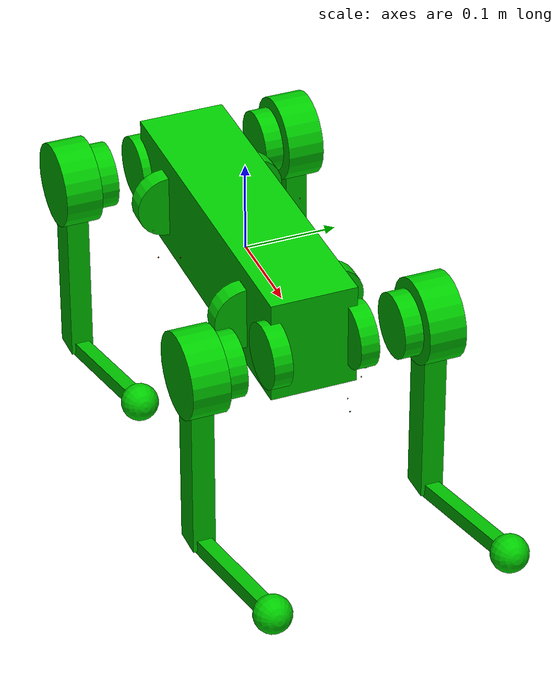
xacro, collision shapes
<?xml version="1.0" ?>
<!-- |    This document was autogenerated by xacro from robot.xacro                    | -->
<!-- |    EDITING THIS FILE BY HAND IS NOT RECOMMENDED                                 | -->
<robot name="go1" xmlns:xacro="http://www.ros.org/wiki/xacro">
  <material name="black">
    <color rgba="0.0 0.0 0.0 1.0"/>
  </material>
  <material name="blue">
    <color rgba="0.0 0.0 0.8 1.0"/>
  </material>
  <material name="green">
    <color rgba="0.0 0.8 0.0 1.0"/>
  </material>
  <material name="grey">
    <color rgba="0.2 0.2 0.2 1.0"/>
  </material>
  <material name="silver">
    <color rgba="0.9137254901960784 0.9137254901960784 0.8470588235294118 1.0"/>
  </material>
  <material name="orange">
    <color rgba="1.0 0.4235294117647059 0.0392156862745098 1.0"/>
  </material>
  <material name="brown">
    <color rgba="0.8705882352941177 0.8117647058823529 0.7647058823529411 1.0"/>
  </material>
  <material name="red">
    <color rgba="0.8 0.0 0.0 1.0"/>
  </material>
  <material name="white">
    <color rgba="1.0 1.0 1.0 1.0"/>
  </material>
  <!-- ros_control plugin: Gazebo Classic only (libgazebo_ros_control.so not available
       under gz sim). Port to gz_ros2_control if joint control is needed. -->
  <ros2_control name="GazeboSimSystem" type="system">
    <hardware>
      <plugin>gz_ros2_control/GazeboSimSystem</plugin>
    </hardware>
    <joint name="FR_hip_joint">
      <command_interface name="effort"><param name="initial_value">0.0</param></command_interface>
      <state_interface name="position"><param name="initial_value">0.0</param></state_interface>
      <state_interface name="velocity"/>
      <state_interface name="effort"/>
    </joint>
    <joint name="FR_thigh_joint">
      <command_interface name="effort"><param name="initial_value">0.0</param></command_interface>
      <state_interface name="position"><param name="initial_value">0.789465</param></state_interface>
      <state_interface name="velocity"/>
      <state_interface name="effort"/>
    </joint>
    <joint name="FR_calf_joint">
      <command_interface name="effort"><param name="initial_value">0.0</param></command_interface>
      <state_interface name="position"><param name="initial_value">-1.578930</param></state_interface>
      <state_interface name="velocity"/>
      <state_interface name="effort"/>
    </joint>
    <joint name="FL_hip_joint">
      <command_interface name="effort"><param name="initial_value">0.0</param></command_interface>
      <state_interface name="position"><param name="initial_value">0.0</param></state_interface>
      <state_interface name="velocity"/>
      <state_interface name="effort"/>
    </joint>
    <joint name="FL_thigh_joint">
      <command_interface name="effort"><param name="initial_value">0.0</param></command_interface>
      <state_interface name="position"><param name="initial_value">0.789465</param></state_interface>
      <state_interface name="velocity"/>
      <state_interface name="effort"/>
    </joint>
    <joint name="FL_calf_joint">
      <command_interface name="effort"><param name="initial_value">0.0</param></command_interface>
      <state_interface name="position"><param name="initial_value">-1.578930</param></state_interface>
      <state_interface name="velocity"/>
      <state_interface name="effort"/>
    </joint>
    <joint name="RR_hip_joint">
      <command_interface name="effort"><param name="initial_value">0.0</param></command_interface>
      <state_interface name="position"><param name="initial_value">0.0</param></state_interface>
      <state_interface name="velocity"/>
      <state_interface name="effort"/>
    </joint>
    <joint name="RR_thigh_joint">
      <command_interface name="effort"><param name="initial_value">0.0</param></command_interface>
      <state_interface name="position"><param name="initial_value">0.789465</param></state_interface>
      <state_interface name="velocity"/>
      <state_interface name="effort"/>
    </joint>
    <joint name="RR_calf_joint">
      <command_interface name="effort"><param name="initial_value">0.0</param></command_interface>
      <state_interface name="position"><param name="initial_value">-1.578930</param></state_interface>
      <state_interface name="velocity"/>
      <state_interface name="effort"/>
    </joint>
    <joint name="RL_hip_joint">
      <command_interface name="effort"><param name="initial_value">0.0</param></command_interface>
      <state_interface name="position"><param name="initial_value">0.0</param></state_interface>
      <state_interface name="velocity"/>
      <state_interface name="effort"/>
    </joint>
    <joint name="RL_thigh_joint">
      <command_interface name="effort"><param name="initial_value">0.0</param></command_interface>
      <state_interface name="position"><param name="initial_value">0.789465</param></state_interface>
      <state_interface name="velocity"/>
      <state_interface name="effort"/>
    </joint>
    <joint name="RL_calf_joint">
      <command_interface name="effort"><param name="initial_value">0.0</param></command_interface>
      <state_interface name="position"><param name="initial_value">-1.578930</param></state_interface>
      <state_interface name="velocity"/>
      <state_interface name="effort"/>
    </joint>
    <sensor name="imu_sensor">
      <state_interface name="orientation.w"/>
      <state_interface name="orientation.x"/>
      <state_interface name="orientation.y"/>
      <state_interface name="orientation.z"/>
      <state_interface name="angular_velocity.x"/>
      <state_interface name="angular_velocity.y"/>
      <state_interface name="angular_velocity.z"/>
      <state_interface name="linear_acceleration.x"/>
      <state_interface name="linear_acceleration.y"/>
      <state_interface name="linear_acceleration.z"/>
    </sensor>
  </ros2_control>
  <gazebo>
    <plugin filename="libgz_ros2_control-system.so"
            name="gz_ros2_control::GazeboSimROS2ControlPlugin">
      <parameters>$(find main_bot)/config/go1_controllers.yaml</parameters>
    </plugin>
    <plugin filename="gz-sim-imu-system" name="gz::sim::systems::Imu"/>
  </gazebo>
  <!-- Show the trajectory of trunk center. Gazebo Classic only (libLinkPlot3DPlugin.so). -->
  <!-- Show the trajectory of foot. You can add another trajectory about another foot. -->
  <!-- Gazebo Classic only (libgazebo_ros_force.so). No gz sim equivalent wired up yet. -->
  <gazebo reference="base">
    <material>Gazebo/Green</material>
    <turnGravityOff>false</turnGravityOff>
  </gazebo>
  <gazebo reference="trunk">
    <mu1>0.2</mu1>
    <mu2>0.2</mu2>
    <kp value="1000000.0"/>
    <kd value="1.0"/>
  </gazebo>
  <gazebo reference="stick_link">
    <mu1>0.2</mu1>
    <mu2>0.2</mu2>
    <material>Gazebo/White</material>
  </gazebo>
  <gazebo reference="imu_link">
    <mu1>0.2</mu1>
    <mu2>0.2</mu2>
    <material>Gazebo/Red</material>
  </gazebo>
  <!-- FL leg -->
  <gazebo reference="FL_hip">
    <mu1>0.2</mu1>
    <mu2>0.2</mu2>
    <material>Gazebo/DarkGrey</material>
  </gazebo>
  <gazebo reference="FL_thigh">
    <mu1>0.2</mu1>
    <mu2>0.2</mu2>
    <self_collide>1</self_collide>
    <material>Gazebo/DarkGrey</material>
    <kp value="1000000.0"/>
    <kd value="1.0"/>
  </gazebo>
  <gazebo reference="FL_calf">
    <mu1>0.2</mu1>
    <mu2>0.2</mu2>
    <self_collide>1</self_collide>
  </gazebo>
  <gazebo reference="FL_foot">
    <mu1>0.6</mu1>
    <mu2>0.6</mu2>
    <self_collide>1</self_collide>
    <material>Gazebo/DarkGrey</material>
    <kp value="1000000.0"/>
    <kd value="1.0"/>
  </gazebo>
  <!-- FR leg -->
  <gazebo reference="FR_hip">
    <mu1>0.2</mu1>
    <mu2>0.2</mu2>
    <material>Gazebo/DarkGrey</material>
  </gazebo>
  <gazebo reference="FR_thigh">
    <mu1>0.2</mu1>
    <mu2>0.2</mu2>
    <self_collide>1</self_collide>
    <material>Gazebo/DarkGrey</material>
    <kp value="1000000.0"/>
    <kd value="1.0"/>
  </gazebo>
  <gazebo reference="FR_calf">
    <mu1>0.2</mu1>
    <mu2>0.2</mu2>
    <self_collide>1</self_collide>
  </gazebo>
  <gazebo reference="FR_foot">
    <mu1>0.6</mu1>
    <mu2>0.6</mu2>
    <self_collide>1</self_collide>
    <material>Gazebo/DarkGrey</material>
    <kp value="1000000.0"/>
    <kd value="1.0"/>
  </gazebo>
  <!-- RL leg -->
  <gazebo reference="RL_hip">
    <mu1>0.2</mu1>
    <mu2>0.2</mu2>
    <material>Gazebo/DarkGrey</material>
  </gazebo>
  <gazebo reference="RL_thigh">
    <mu1>0.2</mu1>
    <mu2>0.2</mu2>
    <self_collide>1</self_collide>
    <material>Gazebo/DarkGrey</material>
    <kp value="1000000.0"/>
    <kd value="1.0"/>
  </gazebo>
  <gazebo reference="RL_calf">
    <mu1>0.2</mu1>
    <mu2>0.2</mu2>
    <self_collide>1</self_collide>
  </gazebo>
  <gazebo reference="RL_foot">
    <mu1>0.6</mu1>
    <mu2>0.6</mu2>
    <self_collide>1</self_collide>
    <material>Gazebo/DarkGrey</material>
    <kp value="1000000.0"/>
    <kd value="1.0"/>
  </gazebo>
  <!-- RR leg -->
  <gazebo reference="RR_hip">
    <mu1>0.2</mu1>
    <mu2>0.2</mu2>
    <material>Gazebo/DarkGrey</material>
  </gazebo>
  <gazebo reference="RR_thigh">
    <mu1>0.2</mu1>
    <mu2>0.2</mu2>
    <self_collide>1</self_collide>
    <material>Gazebo/DarkGrey</material>
    <kp value="1000000.0"/>
    <kd value="1.0"/>
  </gazebo>
  <gazebo reference="RR_calf">
    <mu1>0.2</mu1>
    <mu2>0.2</mu2>
    <self_collide>1</self_collide>
  </gazebo>
  <gazebo reference="RR_foot">
    <mu1>0.6</mu1>
    <mu2>0.6</mu2>
    <self_collide>1</self_collide>
    <material>Gazebo/DarkGrey</material>
    <kp value="1000000.0"/>
    <kd value="1.0"/>
  </gazebo>
  <!-- Rotor related joint and link is only for demonstrate location. -->
  <!-- Actually, the rotor will rotate and the joint is not fixed. Reduction ratio should be considered. -->
  <!-- Debug mode will hung up the robot, use "true" or "false" to switch it. -->
  <link name="base">
    <visual>
      <origin rpy="0 0 0" xyz="0 0 0"/>
      <geometry>
        <box size="0.001 0.001 0.001"/>
      </geometry>
    </visual>
  </link>
  <joint name="floating_base" type="fixed">
    <origin rpy="0 0 0" xyz="0 0 0"/>
    <parent link="base"/>
    <child link="trunk"/>
  </joint>
  <link name="trunk">
    <visual>
      <origin rpy="0 0 0" xyz="0 0 0"/>
      <geometry>
        <mesh filename="package://main_bot/description/meshes/trunk.dae" scale="1 1 1"/>
      </geometry>
      <material name="green"/>
    </visual>
    <collision>
      <origin rpy="0 0 0" xyz="0 0 0"/>
      <geometry>
        <box size="0.3762 0.0935 0.114"/>
      </geometry>
    </collision>
    <inertial>
      <origin rpy="0 0 0" xyz="0.0223 0.002 -0.0005"/>
      <mass value="5.204"/>
      <inertia ixx="0.0168128557" ixy="-0.0002296769" ixz="-0.0002945293" iyy="0.063009565" iyz="-4.18731e-05" izz="0.0716547275"/>
    </inertial>
  </link>
  <joint name="imu_joint" type="fixed">
    <parent link="trunk"/>
    <child link="imu_link"/>
    <origin rpy="0 0 0" xyz="-0.01592 -0.06659 -0.00617"/>
  </joint>
  <link name="imu_link">
    <inertial>
      <mass value="0.001"/>
      <origin rpy="0 0 0" xyz="0 0 0"/>
      <inertia ixx="0.0001" ixy="0" ixz="0" iyy="0.0001" iyz="0" izz="0.0001"/>
    </inertial>
    <visual>
      <origin rpy="0 0 0" xyz="0 0 0"/>
      <geometry>
        <box size="0.001 0.001 0.001"/>
      </geometry>
    </visual>
    <collision>
      <origin rpy="0 0 0" xyz="0 0 0"/>
      <geometry>
        <box size=".001 .001 .001"/>
      </geometry>
    </collision>
  </link>
  <joint name="FR_hip_joint" type="revolute">
    <origin rpy="0 0 0" xyz="0.1881 -0.04675 0"/>
    <parent link="trunk"/>
    <child link="FR_hip"/>
    <axis xyz="1 0 0"/>
    <dynamics damping="0.0" friction="0.0"/>
    <limit effort="23.7" lower="-0.863" upper="0.863" velocity="30.1"/>
  </joint>
  <joint name="FR_hip_rotor_joint" type="fixed">
    <origin rpy="0 0 0" xyz="0.11215 -0.04675 0"/>
    <parent link="trunk"/>
    <child link="FR_hip_rotor"/>
  </joint>
  <link name="FR_hip">
    <visual>
      <origin rpy="3.141592653589793 0 0" xyz="0 0 0"/>
      <geometry>
        <mesh filename="package://main_bot/description/meshes/hip.dae" scale="1 1 1"/>
      </geometry>
      <material name="green"/>
    </visual>
    <collision>
      <origin rpy="1.5707963267948966 0 0" xyz="0 -0.08 0"/>
      <geometry>
        <cylinder length="0.04" radius="0.046"/>
      </geometry>
    </collision>
    <inertial>
      <origin rpy="0 0 0" xyz="-0.005657 0.008752 -0.000102"/>
      <mass value="0.591"/>
      <inertia ixx="0.000334008405" ixy="1.0826066e-05" ixz="1.290732e-06" iyy="0.000619101213" iyz="-1.643194e-06" izz="0.00040057614"/>
    </inertial>
  </link>
  <link name="FR_hip_rotor">
    <visual>
      <origin rpy="0 1.5707963267948966 0" xyz="0 0 0"/>
      <geometry>
        <cylinder length="0.02" radius="0.035"/>
      </geometry>
      <material name="green"/>
    </visual>
    <collision>
      <origin rpy="0 1.5707963267948966 0" xyz="0 0 0"/>
      <geometry>
        <cylinder length="0.02" radius="0.035"/>
      </geometry>
    </collision>
    <inertial>
      <origin rpy="0 0 0" xyz="0.0 0.0 0.0"/>
      <mass value="0.089"/>
      <inertia ixx="0.000111842" ixy="0.0" ixz="0.0" iyy="5.9647e-05" iyz="0.0" izz="5.9647e-05"/>
    </inertial>
  </link>
  <joint name="FR_thigh_joint" type="revolute">
    <origin rpy="0 0 0" xyz="0 -0.08 0"/>
    <parent link="FR_hip"/>
    <child link="FR_thigh"/>
    <axis xyz="0 1 0"/>
    <dynamics damping="0.0" friction="0.0"/>
    <limit effort="23.7" lower="-0.686" upper="4.501" velocity="30.1"/>
  </joint>
  <joint name="FR_thigh_rotor_joint" type="fixed">
    <origin rpy="0 0 0" xyz="0.0 0.00015 0"/>
    <parent link="FR_hip"/>
    <child link="FR_thigh_rotor"/>
  </joint>
  <link name="FR_thigh">
    <visual>
      <origin rpy="0 0 0" xyz="0 0 0"/>
      <geometry>
        <mesh filename="package://main_bot/description/meshes/thigh_mirror.dae" scale="1 1 1"/>
      </geometry>
      <material name="green"/>
    </visual>
    <collision>
      <origin rpy="0 1.5707963267948966 0" xyz="0 0 -0.1065"/>
      <geometry>
        <box size="0.213 0.0245 0.034"/>
      </geometry>
    </collision>
    <inertial>
      <origin rpy="0 0 0" xyz="-0.003342 0.018054 -0.033451"/>
      <mass value="0.92"/>
      <inertia ixx="0.004431760472" ixy="-5.7496807e-05" ixz="-0.000218457134" iyy="0.004485671726" iyz="-0.000572001265" izz="0.000740309489"/>
    </inertial>
  </link>
  <link name="FR_thigh_rotor">
    <visual>
      <origin rpy="1.5707963267948966 0 0" xyz="0 0 0"/>
      <geometry>
        <cylinder length="0.02" radius="0.035"/>
      </geometry>
      <material name="green"/>
    </visual>
    <collision>
      <origin rpy="1.5707963267948966 0 0" xyz="0 0 0"/>
      <geometry>
        <cylinder length="0.02" radius="0.035"/>
      </geometry>
    </collision>
    <inertial>
      <origin rpy="0 0 0" xyz="0.0 0.0 0.0"/>
      <mass value="0.089"/>
      <inertia ixx="5.9647e-05" ixy="0.0" ixz="0.0" iyy="0.000111842" iyz="0.0" izz="5.9647e-05"/>
    </inertial>
  </link>
  <joint name="FR_calf_joint" type="revolute">
    <origin rpy="0 0 0" xyz="0 0 -0.213"/>
    <parent link="FR_thigh"/>
    <child link="FR_calf"/>
    <axis xyz="0 1 0"/>
    <dynamics damping="0.0" friction="0.0"/>
    <limit effort="35.55" lower="-2.818" upper="-0.888" velocity="20.06"/>
  </joint>
  <joint name="FR_calf_rotor_joint" type="fixed">
    <origin rpy="0 0 0" xyz="0.0 0.03235 0"/>
    <parent link="FR_thigh"/>
    <child link="FR_calf_rotor"/>
  </joint>
  <link name="FR_calf">
    <visual>
      <origin rpy="0 0 0" xyz="0 0 0"/>
      <geometry>
        <mesh filename="package://main_bot/description/meshes/calf.dae" scale="1 1 1"/>
      </geometry>
      <material name="green"/>
    </visual>
    <collision>
      <origin rpy="0 1.5707963267948966 0" xyz="0 0 -0.1065"/>
      <geometry>
        <box size="0.213 0.016 0.016"/>
      </geometry>
    </collision>
    <inertial>
      <origin rpy="0 0 0" xyz="0.006197 0.001408 -0.116695"/>
      <mass value="0.135862"/>
      <inertia ixx="0.001088793059" ixy="-2.55679e-07" ixz="7.117814e-06" iyy="0.001100428748" iyz="2.077264e-06" izz="2.4787446e-05"/>
    </inertial>
  </link>
  <link name="FR_calf_rotor">
    <visual>
      <origin rpy="1.5707963267948966 0 0" xyz="0 0 0"/>
      <geometry>
        <cylinder length="0.02" radius="0.035"/>
      </geometry>
      <material name="green"/>
    </visual>
    <collision>
      <origin rpy="1.5707963267948966 0 0" xyz="0 0 0"/>
      <geometry>
        <cylinder length="0.02" radius="0.035"/>
      </geometry>
    </collision>
    <inertial>
      <origin rpy="0 0 0" xyz="0.0 0.0 0.0"/>
      <mass value="0.089"/>
      <inertia ixx="5.9647e-05" ixy="0.0" ixz="0.0" iyy="0.000111842" iyz="0.0" izz="5.9647e-05"/>
    </inertial>
  </link>
  <joint name="FR_foot_fixed" type="fixed">
    <origin rpy="0 0 0" xyz="0 0 -0.213"/>
    <parent link="FR_calf"/>
    <child link="FR_foot"/>
  </joint>
  <link name="FR_foot">
    <visual>
      <origin rpy="0 0 0" xyz="0 0 0"/>
      <geometry>
        <sphere radius="0.01"/>
      </geometry>
      <material name="green"/>
    </visual>
    <collision>
      <origin rpy="0 0 0" xyz="0 0 0"/>
      <geometry>
        <sphere radius="0.02"/>
      </geometry>
    </collision>
    <inertial>
      <mass value="0.06"/>
      <inertia ixx="9.600000000000001e-06" ixy="0.0" ixz="0.0" iyy="9.600000000000001e-06" iyz="0.0" izz="9.600000000000001e-06"/>
    </inertial>
  </link>
  <transmission name="FR_hip_tran">
    <type>transmission_interface/SimpleTransmission</type>
    <joint name="FR_hip_joint">
      <hardwareInterface>hardware_interface/EffortJointInterface</hardwareInterface>
    </joint>
    <actuator name="FR_hip_motor">
      <hardwareInterface>hardware_interface/EffortJointInterface</hardwareInterface>
      <mechanicalReduction>1</mechanicalReduction>
    </actuator>
  </transmission>
  <transmission name="FR_thigh_tran">
    <type>transmission_interface/SimpleTransmission</type>
    <joint name="FR_thigh_joint">
      <hardwareInterface>hardware_interface/EffortJointInterface</hardwareInterface>
    </joint>
    <actuator name="FR_thigh_motor">
      <hardwareInterface>hardware_interface/EffortJointInterface</hardwareInterface>
      <mechanicalReduction>1</mechanicalReduction>
    </actuator>
  </transmission>
  <transmission name="FR_calf_tran">
    <type>transmission_interface/SimpleTransmission</type>
    <joint name="FR_calf_joint">
      <hardwareInterface>hardware_interface/EffortJointInterface</hardwareInterface>
    </joint>
    <actuator name="FR_calf_motor">
      <hardwareInterface>hardware_interface/EffortJointInterface</hardwareInterface>
      <mechanicalReduction>1</mechanicalReduction>
    </actuator>
  </transmission>
  <joint name="FL_hip_joint" type="revolute">
    <origin rpy="0 0 0" xyz="0.1881 0.04675 0"/>
    <parent link="trunk"/>
    <child link="FL_hip"/>
    <axis xyz="1 0 0"/>
    <dynamics damping="0.0" friction="0.0"/>
    <limit effort="23.7" lower="-0.863" upper="0.863" velocity="30.1"/>
  </joint>
  <joint name="FL_hip_rotor_joint" type="fixed">
    <origin rpy="0 0 0" xyz="0.11215 0.04675 0"/>
    <parent link="trunk"/>
    <child link="FL_hip_rotor"/>
  </joint>
  <link name="FL_hip">
    <visual>
      <origin rpy="0 0 0" xyz="0 0 0"/>
      <geometry>
        <mesh filename="package://main_bot/description/meshes/hip.dae" scale="1 1 1"/>
      </geometry>
      <material name="green"/>
    </visual>
    <collision>
      <origin rpy="1.5707963267948966 0 0" xyz="0 0.08 0"/>
      <geometry>
        <cylinder length="0.04" radius="0.046"/>
      </geometry>
    </collision>
    <inertial>
      <origin rpy="0 0 0" xyz="-0.005657 -0.008752 -0.000102"/>
      <mass value="0.591"/>
      <inertia ixx="0.000334008405" ixy="-1.0826066e-05" ixz="1.290732e-06" iyy="0.000619101213" iyz="1.643194e-06" izz="0.00040057614"/>
    </inertial>
  </link>
  <link name="FL_hip_rotor">
    <visual>
      <origin rpy="0 1.5707963267948966 0" xyz="0 0 0"/>
      <geometry>
        <cylinder length="0.02" radius="0.035"/>
      </geometry>
      <material name="green"/>
    </visual>
    <collision>
      <origin rpy="0 1.5707963267948966 0" xyz="0 0 0"/>
      <geometry>
        <cylinder length="0.02" radius="0.035"/>
      </geometry>
    </collision>
    <inertial>
      <origin rpy="0 0 0" xyz="0.0 0.0 0.0"/>
      <mass value="0.089"/>
      <inertia ixx="0.000111842" ixy="0.0" ixz="0.0" iyy="5.9647e-05" iyz="0.0" izz="5.9647e-05"/>
    </inertial>
  </link>
  <joint name="FL_thigh_joint" type="revolute">
    <origin rpy="0 0 0" xyz="0 0.08 0"/>
    <parent link="FL_hip"/>
    <child link="FL_thigh"/>
    <axis xyz="0 1 0"/>
    <dynamics damping="0.0" friction="0.0"/>
    <limit effort="23.7" lower="-0.686" upper="4.501" velocity="30.1"/>
  </joint>
  <joint name="FL_thigh_rotor_joint" type="fixed">
    <origin rpy="0 0 0" xyz="0.0 -0.00015 0"/>
    <parent link="FL_hip"/>
    <child link="FL_thigh_rotor"/>
  </joint>
  <link name="FL_thigh">
    <visual>
      <origin rpy="0 0 0" xyz="0 0 0"/>
      <geometry>
        <mesh filename="package://main_bot/description/meshes/thigh.dae" scale="1 1 1"/>
      </geometry>
      <material name="green"/>
    </visual>
    <collision>
      <origin rpy="0 1.5707963267948966 0" xyz="0 0 -0.1065"/>
      <geometry>
        <box size="0.213 0.0245 0.034"/>
      </geometry>
    </collision>
    <inertial>
      <origin rpy="0 0 0" xyz="-0.003342 -0.018054 -0.033451"/>
      <mass value="0.92"/>
      <inertia ixx="0.004431760472" ixy="5.7496807e-05" ixz="-0.000218457134" iyy="0.004485671726" iyz="0.000572001265" izz="0.000740309489"/>
    </inertial>
  </link>
  <link name="FL_thigh_rotor">
    <visual>
      <origin rpy="1.5707963267948966 0 0" xyz="0 0 0"/>
      <geometry>
        <cylinder length="0.02" radius="0.035"/>
      </geometry>
      <material name="green"/>
    </visual>
    <collision>
      <origin rpy="1.5707963267948966 0 0" xyz="0 0 0"/>
      <geometry>
        <cylinder length="0.02" radius="0.035"/>
      </geometry>
    </collision>
    <inertial>
      <origin rpy="0 0 0" xyz="0.0 0.0 0.0"/>
      <mass value="0.089"/>
      <inertia ixx="5.9647e-05" ixy="0.0" ixz="0.0" iyy="0.000111842" iyz="0.0" izz="5.9647e-05"/>
    </inertial>
  </link>
  <joint name="FL_calf_joint" type="revolute">
    <origin rpy="0 0 0" xyz="0 0 -0.213"/>
    <parent link="FL_thigh"/>
    <child link="FL_calf"/>
    <axis xyz="0 1 0"/>
    <dynamics damping="0.0" friction="0.0"/>
    <limit effort="35.55" lower="-2.818" upper="-0.888" velocity="20.06"/>
  </joint>
  <joint name="FL_calf_rotor_joint" type="fixed">
    <origin rpy="0 0 0" xyz="0.0 -0.03235 0"/>
    <parent link="FL_thigh"/>
    <child link="FL_calf_rotor"/>
  </joint>
  <link name="FL_calf">
    <visual>
      <origin rpy="0 0 0" xyz="0 0 0"/>
      <geometry>
        <mesh filename="package://main_bot/description/meshes/calf.dae" scale="1 1 1"/>
      </geometry>
      <material name="green"/>
    </visual>
    <collision>
      <origin rpy="0 1.5707963267948966 0" xyz="0 0 -0.1065"/>
      <geometry>
        <box size="0.213 0.016 0.016"/>
      </geometry>
    </collision>
    <inertial>
      <origin rpy="0 0 0" xyz="0.006197 0.001408 -0.116695"/>
      <mass value="0.135862"/>
      <inertia ixx="0.001088793059" ixy="-2.55679e-07" ixz="7.117814e-06" iyy="0.001100428748" iyz="2.077264e-06" izz="2.4787446e-05"/>
    </inertial>
  </link>
  <link name="FL_calf_rotor">
    <visual>
      <origin rpy="1.5707963267948966 0 0" xyz="0 0 0"/>
      <geometry>
        <cylinder length="0.02" radius="0.035"/>
      </geometry>
      <material name="green"/>
    </visual>
    <collision>
      <origin rpy="1.5707963267948966 0 0" xyz="0 0 0"/>
      <geometry>
        <cylinder length="0.02" radius="0.035"/>
      </geometry>
    </collision>
    <inertial>
      <origin rpy="0 0 0" xyz="0.0 0.0 0.0"/>
      <mass value="0.089"/>
      <inertia ixx="5.9647e-05" ixy="0.0" ixz="0.0" iyy="0.000111842" iyz="0.0" izz="5.9647e-05"/>
    </inertial>
  </link>
  <joint name="FL_foot_fixed" type="fixed">
    <origin rpy="0 0 0" xyz="0 0 -0.213"/>
    <parent link="FL_calf"/>
    <child link="FL_foot"/>
  </joint>
  <link name="FL_foot">
    <visual>
      <origin rpy="0 0 0" xyz="0 0 0"/>
      <geometry>
        <sphere radius="0.01"/>
      </geometry>
      <material name="green"/>
    </visual>
    <collision>
      <origin rpy="0 0 0" xyz="0 0 0"/>
      <geometry>
        <sphere radius="0.02"/>
      </geometry>
    </collision>
    <inertial>
      <mass value="0.06"/>
      <inertia ixx="9.600000000000001e-06" ixy="0.0" ixz="0.0" iyy="9.600000000000001e-06" iyz="0.0" izz="9.600000000000001e-06"/>
    </inertial>
  </link>
  <transmission name="FL_hip_tran">
    <type>transmission_interface/SimpleTransmission</type>
    <joint name="FL_hip_joint">
      <hardwareInterface>hardware_interface/EffortJointInterface</hardwareInterface>
    </joint>
    <actuator name="FL_hip_motor">
      <hardwareInterface>hardware_interface/EffortJointInterface</hardwareInterface>
      <mechanicalReduction>1</mechanicalReduction>
    </actuator>
  </transmission>
  <transmission name="FL_thigh_tran">
    <type>transmission_interface/SimpleTransmission</type>
    <joint name="FL_thigh_joint">
      <hardwareInterface>hardware_interface/EffortJointInterface</hardwareInterface>
    </joint>
    <actuator name="FL_thigh_motor">
      <hardwareInterface>hardware_interface/EffortJointInterface</hardwareInterface>
      <mechanicalReduction>1</mechanicalReduction>
    </actuator>
  </transmission>
  <transmission name="FL_calf_tran">
    <type>transmission_interface/SimpleTransmission</type>
    <joint name="FL_calf_joint">
      <hardwareInterface>hardware_interface/EffortJointInterface</hardwareInterface>
    </joint>
    <actuator name="FL_calf_motor">
      <hardwareInterface>hardware_interface/EffortJointInterface</hardwareInterface>
      <mechanicalReduction>1</mechanicalReduction>
    </actuator>
  </transmission>
  <joint name="RR_hip_joint" type="revolute">
    <origin rpy="0 0 0" xyz="-0.1881 -0.04675 0"/>
    <parent link="trunk"/>
    <child link="RR_hip"/>
    <axis xyz="1 0 0"/>
    <dynamics damping="0.0" friction="0.0"/>
    <limit effort="23.7" lower="-0.863" upper="0.863" velocity="30.1"/>
  </joint>
  <joint name="RR_hip_rotor_joint" type="fixed">
    <origin rpy="0 0 0" xyz="-0.11215 -0.04675 0"/>
    <parent link="trunk"/>
    <child link="RR_hip_rotor"/>
  </joint>
  <link name="RR_hip">
    <visual>
      <origin rpy="3.141592653589793 3.141592653589793 0" xyz="0 0 0"/>
      <geometry>
        <mesh filename="package://main_bot/description/meshes/hip.dae" scale="1 1 1"/>
      </geometry>
      <material name="green"/>
    </visual>
    <collision>
      <origin rpy="1.5707963267948966 0 0" xyz="0 -0.08 0"/>
      <geometry>
        <cylinder length="0.04" radius="0.046"/>
      </geometry>
    </collision>
    <inertial>
      <origin rpy="0 0 0" xyz="0.005657 0.008752 -0.000102"/>
      <mass value="0.591"/>
      <inertia ixx="0.000334008405" ixy="-1.0826066e-05" ixz="-1.290732e-06" iyy="0.000619101213" iyz="-1.643194e-06" izz="0.00040057614"/>
    </inertial>
  </link>
  <link name="RR_hip_rotor">
    <visual>
      <origin rpy="0 1.5707963267948966 0" xyz="0 0 0"/>
      <geometry>
        <cylinder length="0.02" radius="0.035"/>
      </geometry>
      <material name="green"/>
    </visual>
    <collision>
      <origin rpy="0 1.5707963267948966 0" xyz="0 0 0"/>
      <geometry>
        <cylinder length="0.02" radius="0.035"/>
      </geometry>
    </collision>
    <inertial>
      <origin rpy="0 0 0" xyz="0.0 0.0 0.0"/>
      <mass value="0.089"/>
      <inertia ixx="0.000111842" ixy="0.0" ixz="0.0" iyy="5.9647e-05" iyz="0.0" izz="5.9647e-05"/>
    </inertial>
  </link>
  <joint name="RR_thigh_joint" type="revolute">
    <origin rpy="0 0 0" xyz="0 -0.08 0"/>
    <parent link="RR_hip"/>
    <child link="RR_thigh"/>
    <axis xyz="0 1 0"/>
    <dynamics damping="0.0" friction="0.0"/>
    <limit effort="23.7" lower="-0.686" upper="4.501" velocity="30.1"/>
  </joint>
  <joint name="RR_thigh_rotor_joint" type="fixed">
    <origin rpy="0 0 0" xyz="0.0 0.00015 0"/>
    <parent link="RR_hip"/>
    <child link="RR_thigh_rotor"/>
  </joint>
  <link name="RR_thigh">
    <visual>
      <origin rpy="0 0 0" xyz="0 0 0"/>
      <geometry>
        <mesh filename="package://main_bot/description/meshes/thigh_mirror.dae" scale="1 1 1"/>
      </geometry>
      <material name="green"/>
    </visual>
    <collision>
      <origin rpy="0 1.5707963267948966 0" xyz="0 0 -0.1065"/>
      <geometry>
        <box size="0.213 0.0245 0.034"/>
      </geometry>
    </collision>
    <inertial>
      <origin rpy="0 0 0" xyz="-0.003342 0.018054 -0.033451"/>
      <mass value="0.92"/>
      <inertia ixx="0.004431760472" ixy="-5.7496807e-05" ixz="-0.000218457134" iyy="0.004485671726" iyz="-0.000572001265" izz="0.000740309489"/>
    </inertial>
  </link>
  <link name="RR_thigh_rotor">
    <visual>
      <origin rpy="1.5707963267948966 0 0" xyz="0 0 0"/>
      <geometry>
        <cylinder length="0.02" radius="0.035"/>
      </geometry>
      <material name="green"/>
    </visual>
    <collision>
      <origin rpy="1.5707963267948966 0 0" xyz="0 0 0"/>
      <geometry>
        <cylinder length="0.02" radius="0.035"/>
      </geometry>
    </collision>
    <inertial>
      <origin rpy="0 0 0" xyz="0.0 0.0 0.0"/>
      <mass value="0.089"/>
      <inertia ixx="5.9647e-05" ixy="0.0" ixz="0.0" iyy="0.000111842" iyz="0.0" izz="5.9647e-05"/>
    </inertial>
  </link>
  <joint name="RR_calf_joint" type="revolute">
    <origin rpy="0 0 0" xyz="0 0 -0.213"/>
    <parent link="RR_thigh"/>
    <child link="RR_calf"/>
    <axis xyz="0 1 0"/>
    <dynamics damping="0.0" friction="0.0"/>
    <limit effort="35.55" lower="-2.818" upper="-0.888" velocity="20.06"/>
  </joint>
  <joint name="RR_calf_rotor_joint" type="fixed">
    <origin rpy="0 0 0" xyz="0.0 0.03235 0"/>
    <parent link="RR_thigh"/>
    <child link="RR_calf_rotor"/>
  </joint>
  <link name="RR_calf">
    <visual>
      <origin rpy="0 0 0" xyz="0 0 0"/>
      <geometry>
        <mesh filename="package://main_bot/description/meshes/calf.dae" scale="1 1 1"/>
      </geometry>
      <material name="green"/>
    </visual>
    <collision>
      <origin rpy="0 1.5707963267948966 0" xyz="0 0 -0.1065"/>
      <geometry>
        <box size="0.213 0.016 0.016"/>
      </geometry>
    </collision>
    <inertial>
      <origin rpy="0 0 0" xyz="0.006197 0.001408 -0.116695"/>
      <mass value="0.135862"/>
      <inertia ixx="0.001088793059" ixy="-2.55679e-07" ixz="7.117814e-06" iyy="0.001100428748" iyz="2.077264e-06" izz="2.4787446e-05"/>
    </inertial>
  </link>
  <link name="RR_calf_rotor">
    <visual>
      <origin rpy="1.5707963267948966 0 0" xyz="0 0 0"/>
      <geometry>
        <cylinder length="0.02" radius="0.035"/>
      </geometry>
      <material name="green"/>
    </visual>
    <collision>
      <origin rpy="1.5707963267948966 0 0" xyz="0 0 0"/>
      <geometry>
        <cylinder length="0.02" radius="0.035"/>
      </geometry>
    </collision>
    <inertial>
      <origin rpy="0 0 0" xyz="0.0 0.0 0.0"/>
      <mass value="0.089"/>
      <inertia ixx="5.9647e-05" ixy="0.0" ixz="0.0" iyy="0.000111842" iyz="0.0" izz="5.9647e-05"/>
    </inertial>
  </link>
  <joint name="RR_foot_fixed" type="fixed">
    <origin rpy="0 0 0" xyz="0 0 -0.213"/>
    <parent link="RR_calf"/>
    <child link="RR_foot"/>
  </joint>
  <link name="RR_foot">
    <visual>
      <origin rpy="0 0 0" xyz="0 0 0"/>
      <geometry>
        <sphere radius="0.01"/>
      </geometry>
      <material name="green"/>
    </visual>
    <collision>
      <origin rpy="0 0 0" xyz="0 0 0"/>
      <geometry>
        <sphere radius="0.02"/>
      </geometry>
    </collision>
    <inertial>
      <mass value="0.06"/>
      <inertia ixx="9.600000000000001e-06" ixy="0.0" ixz="0.0" iyy="9.600000000000001e-06" iyz="0.0" izz="9.600000000000001e-06"/>
    </inertial>
  </link>
  <transmission name="RR_hip_tran">
    <type>transmission_interface/SimpleTransmission</type>
    <joint name="RR_hip_joint">
      <hardwareInterface>hardware_interface/EffortJointInterface</hardwareInterface>
    </joint>
    <actuator name="RR_hip_motor">
      <hardwareInterface>hardware_interface/EffortJointInterface</hardwareInterface>
      <mechanicalReduction>1</mechanicalReduction>
    </actuator>
  </transmission>
  <transmission name="RR_thigh_tran">
    <type>transmission_interface/SimpleTransmission</type>
    <joint name="RR_thigh_joint">
      <hardwareInterface>hardware_interface/EffortJointInterface</hardwareInterface>
    </joint>
    <actuator name="RR_thigh_motor">
      <hardwareInterface>hardware_interface/EffortJointInterface</hardwareInterface>
      <mechanicalReduction>1</mechanicalReduction>
    </actuator>
  </transmission>
  <transmission name="RR_calf_tran">
    <type>transmission_interface/SimpleTransmission</type>
    <joint name="RR_calf_joint">
      <hardwareInterface>hardware_interface/EffortJointInterface</hardwareInterface>
    </joint>
    <actuator name="RR_calf_motor">
      <hardwareInterface>hardware_interface/EffortJointInterface</hardwareInterface>
      <mechanicalReduction>1</mechanicalReduction>
    </actuator>
  </transmission>
  <joint name="RL_hip_joint" type="revolute">
    <origin rpy="0 0 0" xyz="-0.1881 0.04675 0"/>
    <parent link="trunk"/>
    <child link="RL_hip"/>
    <axis xyz="1 0 0"/>
    <dynamics damping="0.0" friction="0.0"/>
    <limit effort="23.7" lower="-0.863" upper="0.863" velocity="30.1"/>
  </joint>
  <joint name="RL_hip_rotor_joint" type="fixed">
    <origin rpy="0 0 0" xyz="-0.11215 0.04675 0"/>
    <parent link="trunk"/>
    <child link="RL_hip_rotor"/>
  </joint>
  <link name="RL_hip">
    <visual>
      <origin rpy="0 3.141592653589793 0" xyz="0 0 0"/>
      <geometry>
        <mesh filename="package://main_bot/description/meshes/hip.dae" scale="1 1 1"/>
      </geometry>
      <material name="green"/>
    </visual>
    <collision>
      <origin rpy="1.5707963267948966 0 0" xyz="0 0.08 0"/>
      <geometry>
        <cylinder length="0.04" radius="0.046"/>
      </geometry>
    </collision>
    <inertial>
      <origin rpy="0 0 0" xyz="0.005657 -0.008752 -0.000102"/>
      <mass value="0.591"/>
      <inertia ixx="0.000334008405" ixy="1.0826066e-05" ixz="-1.290732e-06" iyy="0.000619101213" iyz="1.643194e-06" izz="0.00040057614"/>
    </inertial>
  </link>
  <link name="RL_hip_rotor">
    <visual>
      <origin rpy="0 1.5707963267948966 0" xyz="0 0 0"/>
      <geometry>
        <cylinder length="0.02" radius="0.035"/>
      </geometry>
      <material name="green"/>
    </visual>
    <collision>
      <origin rpy="0 1.5707963267948966 0" xyz="0 0 0"/>
      <geometry>
        <cylinder length="0.02" radius="0.035"/>
      </geometry>
    </collision>
    <inertial>
      <origin rpy="0 0 0" xyz="0.0 0.0 0.0"/>
      <mass value="0.089"/>
      <inertia ixx="0.000111842" ixy="0.0" ixz="0.0" iyy="5.9647e-05" iyz="0.0" izz="5.9647e-05"/>
    </inertial>
  </link>
  <joint name="RL_thigh_joint" type="revolute">
    <origin rpy="0 0 0" xyz="0 0.08 0"/>
    <parent link="RL_hip"/>
    <child link="RL_thigh"/>
    <axis xyz="0 1 0"/>
    <dynamics damping="0.0" friction="0.0"/>
    <limit effort="23.7" lower="-0.686" upper="4.501" velocity="30.1"/>
  </joint>
  <joint name="RL_thigh_rotor_joint" type="fixed">
    <origin rpy="0 0 0" xyz="0.0 -0.00015 0"/>
    <parent link="RL_hip"/>
    <child link="RL_thigh_rotor"/>
  </joint>
  <link name="RL_thigh">
    <visual>
      <origin rpy="0 0 0" xyz="0 0 0"/>
      <geometry>
        <mesh filename="package://main_bot/description/meshes/thigh.dae" scale="1 1 1"/>
      </geometry>
      <material name="green"/>
    </visual>
    <collision>
      <origin rpy="0 1.5707963267948966 0" xyz="0 0 -0.1065"/>
      <geometry>
        <box size="0.213 0.0245 0.034"/>
      </geometry>
    </collision>
    <inertial>
      <origin rpy="0 0 0" xyz="-0.003342 -0.018054 -0.033451"/>
      <mass value="0.92"/>
      <inertia ixx="0.004431760472" ixy="5.7496807e-05" ixz="-0.000218457134" iyy="0.004485671726" iyz="0.000572001265" izz="0.000740309489"/>
    </inertial>
  </link>
  <link name="RL_thigh_rotor">
    <visual>
      <origin rpy="1.5707963267948966 0 0" xyz="0 0 0"/>
      <geometry>
        <cylinder length="0.02" radius="0.035"/>
      </geometry>
      <material name="green"/>
    </visual>
    <collision>
      <origin rpy="1.5707963267948966 0 0" xyz="0 0 0"/>
      <geometry>
        <cylinder length="0.02" radius="0.035"/>
      </geometry>
    </collision>
    <inertial>
      <origin rpy="0 0 0" xyz="0.0 0.0 0.0"/>
      <mass value="0.089"/>
      <inertia ixx="5.9647e-05" ixy="0.0" ixz="0.0" iyy="0.000111842" iyz="0.0" izz="5.9647e-05"/>
    </inertial>
  </link>
  <joint name="RL_calf_joint" type="revolute">
    <origin rpy="0 0 0" xyz="0 0 -0.213"/>
    <parent link="RL_thigh"/>
    <child link="RL_calf"/>
    <axis xyz="0 1 0"/>
    <dynamics damping="0.0" friction="0.0"/>
    <limit effort="35.55" lower="-2.818" upper="-0.888" velocity="20.06"/>
  </joint>
  <joint name="RL_calf_rotor_joint" type="fixed">
    <origin rpy="0 0 0" xyz="0.0 -0.03235 0"/>
    <parent link="RL_thigh"/>
    <child link="RL_calf_rotor"/>
  </joint>
  <link name="RL_calf">
    <visual>
      <origin rpy="0 0 0" xyz="0 0 0"/>
      <geometry>
        <mesh filename="package://main_bot/description/meshes/calf.dae" scale="1 1 1"/>
      </geometry>
      <material name="green"/>
    </visual>
    <collision>
      <origin rpy="0 1.5707963267948966 0" xyz="0 0 -0.1065"/>
      <geometry>
        <box size="0.213 0.016 0.016"/>
      </geometry>
    </collision>
    <inertial>
      <origin rpy="0 0 0" xyz="0.006197 0.001408 -0.116695"/>
      <mass value="0.135862"/>
      <inertia ixx="0.001088793059" ixy="-2.55679e-07" ixz="7.117814e-06" iyy="0.001100428748" iyz="2.077264e-06" izz="2.4787446e-05"/>
    </inertial>
  </link>
  <link name="RL_calf_rotor">
    <visual>
      <origin rpy="1.5707963267948966 0 0" xyz="0 0 0"/>
      <geometry>
        <cylinder length="0.02" radius="0.035"/>
      </geometry>
      <material name="green"/>
    </visual>
    <collision>
      <origin rpy="1.5707963267948966 0 0" xyz="0 0 0"/>
      <geometry>
        <cylinder length="0.02" radius="0.035"/>
      </geometry>
    </collision>
    <inertial>
      <origin rpy="0 0 0" xyz="0.0 0.0 0.0"/>
      <mass value="0.089"/>
      <inertia ixx="5.9647e-05" ixy="0.0" ixz="0.0" iyy="0.000111842" iyz="0.0" izz="5.9647e-05"/>
    </inertial>
  </link>
  <joint name="RL_foot_fixed" type="fixed">
    <origin rpy="0 0 0" xyz="0 0 -0.213"/>
    <parent link="RL_calf"/>
    <child link="RL_foot"/>
  </joint>
  <link name="RL_foot">
    <visual>
      <origin rpy="0 0 0" xyz="0 0 0"/>
      <geometry>
        <sphere radius="0.01"/>
      </geometry>
      <material name="green"/>
    </visual>
    <collision>
      <origin rpy="0 0 0" xyz="0 0 0"/>
      <geometry>
        <sphere radius="0.02"/>
      </geometry>
    </collision>
    <inertial>
      <mass value="0.06"/>
      <inertia ixx="9.600000000000001e-06" ixy="0.0" ixz="0.0" iyy="9.600000000000001e-06" iyz="0.0" izz="9.600000000000001e-06"/>
    </inertial>
  </link>
  <transmission name="RL_hip_tran">
    <type>transmission_interface/SimpleTransmission</type>
    <joint name="RL_hip_joint">
      <hardwareInterface>hardware_interface/EffortJointInterface</hardwareInterface>
    </joint>
    <actuator name="RL_hip_motor">
      <hardwareInterface>hardware_interface/EffortJointInterface</hardwareInterface>
      <mechanicalReduction>1</mechanicalReduction>
    </actuator>
  </transmission>
  <transmission name="RL_thigh_tran">
    <type>transmission_interface/SimpleTransmission</type>
    <joint name="RL_thigh_joint">
      <hardwareInterface>hardware_interface/EffortJointInterface</hardwareInterface>
    </joint>
    <actuator name="RL_thigh_motor">
      <hardwareInterface>hardware_interface/EffortJointInterface</hardwareInterface>
      <mechanicalReduction>1</mechanicalReduction>
    </actuator>
  </transmission>
  <transmission name="RL_calf_tran">
    <type>transmission_interface/SimpleTransmission</type>
    <joint name="RL_calf_joint">
      <hardwareInterface>hardware_interface/EffortJointInterface</hardwareInterface>
    </joint>
    <actuator name="RL_calf_motor">
      <hardwareInterface>hardware_interface/EffortJointInterface</hardwareInterface>
      <mechanicalReduction>1</mechanicalReduction>
    </actuator>
  </transmission>
  <joint name="camera_joint_face" type="fixed">
    <origin rpy="3.141592653589793 0 0" xyz="0.2785 0.0125 0.0167"/>
    <parent link="trunk"/>
    <child link="camera_face"/>
  </joint>
  <link name="camera_face">
    <collision>
      <origin rpy="0 0 0" xyz="0 0 0"/>
      <geometry>
        <box size=".001 .001 .001"/>
      </geometry>
    </collision>
    <visual>
      <origin rpy="0 0 0" xyz="0 0 0"/>
      <geometry>
        <mesh filename="package://main_bot/description/meshes/depthCamera.dae" scale="1 1 1"/>
      </geometry>
    </visual>
    <inertial>
      <mass value="1e-5"/>
      <origin rpy="0 0 0" xyz="0 0 0"/>
      <inertia ixx="1e-6" ixy="0" ixz="0" iyy="1e-6" iyz="0" izz="1e-6"/>
    </inertial>
  </link>
  <joint name="camera_optical_joint_face" type="fixed">
    <origin rpy="-1.5707963267948966 0 -1.5707963267948966" xyz="0 0 0"/>
    <parent link="camera_face"/>
    <child link="camera_optical_face"/>
  </joint>
  <link name="camera_optical_face">
        </link>
  <joint name="camera_joint_chin" type="fixed">
    <origin rpy="3.141592653589793 1.5707963267948966 0" xyz="0.2522 0.0125 -0.0436"/>
    <parent link="trunk"/>
    <child link="camera_chin"/>
  </joint>
  <link name="camera_chin">
    <collision>
      <origin rpy="0 0 0" xyz="0 0 0"/>
      <geometry>
        <box size=".001 .001 .001"/>
      </geometry>
    </collision>
    <visual>
      <origin rpy="0 0 0" xyz="0 0 0"/>
      <geometry>
        <mesh filename="package://main_bot/description/meshes/depthCamera.dae" scale="1 1 1"/>
      </geometry>
    </visual>
    <inertial>
      <mass value="1e-5"/>
      <origin rpy="0 0 0" xyz="0 0 0"/>
      <inertia ixx="1e-6" ixy="0" ixz="0" iyy="1e-6" iyz="0" izz="1e-6"/>
    </inertial>
  </link>
  <joint name="camera_optical_joint_chin" type="fixed">
    <origin rpy="-1.5707963267948966 0 -1.5707963267948966" xyz="0 0 0"/>
    <parent link="camera_chin"/>
    <child link="camera_optical_chin"/>
  </joint>
  <link name="camera_optical_chin">
        </link>
  <joint name="camera_joint_left" type="fixed">
    <origin rpy="3.141592653589793 0.2618 1.5707963267948966" xyz="-0.066 0.082 -0.0176"/>
    <parent link="trunk"/>
    <child link="camera_left"/>
  </joint>
  <link name="camera_left">
    <collision>
      <origin rpy="0 0 0" xyz="0 0 0"/>
      <geometry>
        <box size=".001 .001 .001"/>
      </geometry>
    </collision>
    <visual>
      <origin rpy="0 0 0" xyz="0 0 0"/>
      <geometry>
        <mesh filename="package://main_bot/description/meshes/depthCamera.dae" scale="1 1 1"/>
      </geometry>
    </visual>
    <inertial>
      <mass value="1e-5"/>
      <origin rpy="0 0 0" xyz="0 0 0"/>
      <inertia ixx="1e-6" ixy="0" ixz="0" iyy="1e-6" iyz="0" izz="1e-6"/>
    </inertial>
  </link>
  <joint name="camera_optical_joint_left" type="fixed">
    <origin rpy="-1.5707963267948966 0 -1.5707963267948966" xyz="0 0 0"/>
    <parent link="camera_left"/>
    <child link="camera_optical_left"/>
  </joint>
  <link name="camera_optical_left">
        </link>
  <joint name="camera_joint_right" type="fixed">
    <origin rpy="3.141592653589793 0.2618 -1.5707963267948966" xyz="-0.041 -0.082 -0.0176"/>
    <parent link="trunk"/>
    <child link="camera_right"/>
  </joint>
  <link name="camera_right">
    <collision>
      <origin rpy="0 0 0" xyz="0 0 0"/>
      <geometry>
        <box size=".001 .001 .001"/>
      </geometry>
    </collision>
    <visual>
      <origin rpy="0 0 0" xyz="0 0 0"/>
      <geometry>
        <mesh filename="package://main_bot/description/meshes/depthCamera.dae" scale="1 1 1"/>
      </geometry>
    </visual>
    <inertial>
      <mass value="1e-5"/>
      <origin rpy="0 0 0" xyz="0 0 0"/>
      <inertia ixx="1e-6" ixy="0" ixz="0" iyy="1e-6" iyz="0" izz="1e-6"/>
    </inertial>
  </link>
  <joint name="camera_optical_joint_right" type="fixed">
    <origin rpy="-1.5707963267948966 0 -1.5707963267948966" xyz="0 0 0"/>
    <parent link="camera_right"/>
    <child link="camera_optical_right"/>
  </joint>
  <link name="camera_optical_right">
        </link>
  <joint name="camera_joint_rearDown" type="fixed">
    <origin rpy="3.141592653589793 1.5707963267948966 0" xyz="-0.0825 0.0125 -0.04365"/>
    <parent link="trunk"/>
    <child link="camera_rearDown"/>
  </joint>
  <link name="camera_rearDown">
    <collision>
      <origin rpy="0 0 0" xyz="0 0 0"/>
      <geometry>
        <box size=".001 .001 .001"/>
      </geometry>
    </collision>
    <visual>
      <origin rpy="0 0 0" xyz="0 0 0"/>
      <geometry>
        <mesh filename="package://main_bot/description/meshes/depthCamera.dae" scale="1 1 1"/>
      </geometry>
    </visual>
    <inertial>
      <mass value="1e-5"/>
      <origin rpy="0 0 0" xyz="0 0 0"/>
      <inertia ixx="1e-6" ixy="0" ixz="0" iyy="1e-6" iyz="0" izz="1e-6"/>
    </inertial>
  </link>
  <joint name="camera_optical_joint_rearDown" type="fixed">
    <origin rpy="-1.5707963267948966 0 -1.5707963267948966" xyz="0 0 0"/>
    <parent link="camera_rearDown"/>
    <child link="camera_optical_rearDown"/>
  </joint>
  <link name="camera_optical_rearDown">
        </link>
  <joint name="camera_laserscan_joint_left" type="fixed">
    <origin rpy="0 0.2618 0" xyz="0 0 0"/>
    <parent link="camera_left"/>
    <child link="camera_laserscan_link_left"/>
  </joint>
  <link name="camera_laserscan_link_left">
    </link>
  <joint name="camera_laserscan_joint_right" type="fixed">
    <origin rpy="0 0.2618 0" xyz="0 0 0"/>
    <parent link="camera_right"/>
    <child link="camera_laserscan_link_right"/>
  </joint>
  <link name="camera_laserscan_link_right">
    </link>
  <joint name="ultraSound_joint_left" type="fixed">
    <origin rpy="0 0.2618 1.5707963267948966" xyz="-0.0535  0.0826 0.00868"/>
    <parent link="trunk"/>
    <child link="ultraSound_left"/>
  </joint>
  <link name="ultraSound_left">
    <collision>
      <origin rpy="0 0 0" xyz="0 0 0"/>
      <geometry>
        <box size=".001 .001 .001"/>
      </geometry>
    </collision>
    <visual>
      <origin rpy="0 0 0" xyz="0 0 0"/>
      <geometry>
        <mesh filename="package://main_bot/description/meshes/ultraSound.dae" scale="1 1 1"/>
      </geometry>
      <material name="black"/>
    </visual>
    <inertial>
      <mass value="1e-5"/>
      <origin rpy="0 0 0" xyz="0 0 0"/>
      <inertia ixx="1e-6" ixy="0" ixz="0" iyy="1e-6" iyz="0" izz="1e-6"/>
    </inertial>
  </link>
  <joint name="ultraSound_joint_right" type="fixed">
    <origin rpy="0 0.2618 -1.5707963267948966" xyz="-0.0535 -0.0826 0.00868"/>
    <parent link="trunk"/>
    <child link="ultraSound_right"/>
  </joint>
  <link name="ultraSound_right">
    <collision>
      <origin rpy="0 0 0" xyz="0 0 0"/>
      <geometry>
        <box size=".001 .001 .001"/>
      </geometry>
    </collision>
    <visual>
      <origin rpy="0 0 0" xyz="0 0 0"/>
      <geometry>
        <mesh filename="package://main_bot/description/meshes/ultraSound.dae" scale="1 1 1"/>
      </geometry>
      <material name="black"/>
    </visual>
    <inertial>
      <mass value="1e-5"/>
      <origin rpy="0 0 0" xyz="0 0 0"/>
      <inertia ixx="1e-6" ixy="0" ixz="0" iyy="1e-6" iyz="0" izz="1e-6"/>
    </inertial>
  </link>
  <joint name="ultraSound_joint_face" type="fixed">
    <origin rpy="0 0 0" xyz="0.2747 0.0 -0.0088"/>
    <parent link="trunk"/>
    <child link="ultraSound_face"/>
  </joint>
  <link name="ultraSound_face">
    <collision>
      <origin rpy="0 0 0" xyz="0 0 0"/>
      <geometry>
        <box size=".001 .001 .001"/>
      </geometry>
    </collision>
    <visual>
      <origin rpy="0 0 0" xyz="0 0 0"/>
      <geometry>
        <mesh filename="package://main_bot/description/meshes/ultraSound.dae" scale="1 1 1"/>
      </geometry>
      <material name="black"/>
    </visual>
    <inertial>
      <mass value="1e-5"/>
      <origin rpy="0 0 0" xyz="0 0 0"/>
      <inertia ixx="1e-6" ixy="0" ixz="0" iyy="1e-6" iyz="0" izz="1e-6"/>
    </inertial>
  </link>
</robot>
